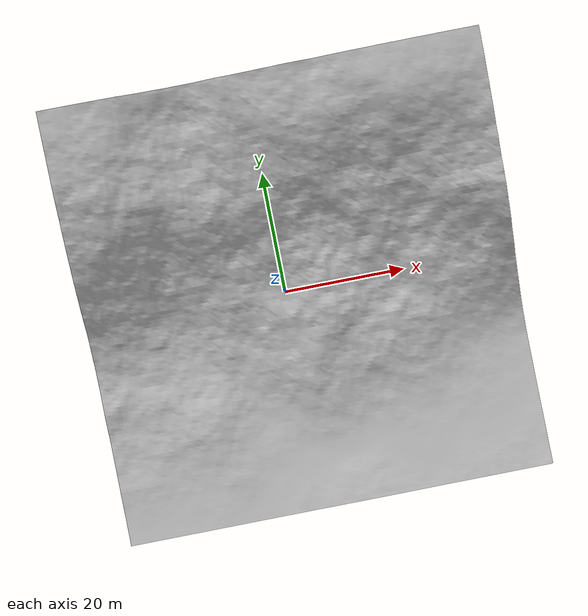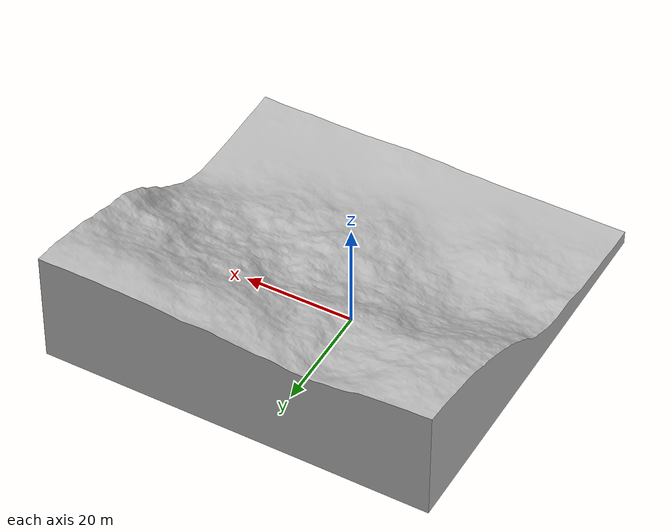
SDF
<?xml version='1.0'?>
<sdf version='1.6'>
  <model name='landslide_dae'>
    <static>1</static>
    <allow_auto_disable>1</allow_auto_disable>
    <link name='terrain'>
      <self_collide>0</self_collide>
      <enable_wind>0</enable_wind>
      <kinematic>0</kinematic>
      <pose frame=''>0 0 0 0 0 0</pose>
      <gravity>1</gravity>
      <inertial>
        <mass>1</mass>
        <pose frame=''>0 0 0 0 0 0</pose>
        <inertia>
          <ixx>1</ixx>
          <ixy>0</ixy>
          <ixz>0</ixz>
          <iyy>1</iyy>
          <iyz>0</iyz>
          <izz>1</izz>
        </inertia>
      </inertial>

      <collision name='collision'>
        <laser_retro>0</laser_retro>
        <max_contacts>10</max_contacts>
        <pose frame=''>0 0 0 0 0 0</pose>
        <geometry>
          <mesh>
            <uri>model://landslide_dae/meshes/landslide_model.dae</uri>
            <scale>1 1 1</scale>
          </mesh>
        </geometry>
        <surface>
          <friction>
            <ode>
              <mu>100</mu>
              <mu2>50</mu2>
              <fdir1>0 0 0</fdir1>
              <slip1>0</slip1>
              <slip2>0</slip2>
            </ode>
            <torsional>
              <coefficient>1</coefficient>
              <patch_radius>0</patch_radius>
              <surface_radius>0</surface_radius>
              <use_patch_radius>1</use_patch_radius>
              <ode>
                <slip>0</slip>
              </ode>
            </torsional>
          </friction>
          <bounce>
            <restitution_coefficient>0</restitution_coefficient>
            <threshold>1e+06</threshold>
          </bounce>
          <contact>
            <collide_without_contact>0</collide_without_contact>
            <collide_without_contact_bitmask>1</collide_without_contact_bitmask>
            <collide_bitmask>1</collide_bitmask>
            <ode>
              <soft_cfm>0</soft_cfm>
              <soft_erp>0.2</soft_erp>
              <kp>1e+13</kp>
              <kd>1</kd>
              <max_vel>0.01</max_vel>
              <min_depth>0</min_depth>
            </ode>
            <bullet>
              <split_impulse>1</split_impulse>
              <split_impulse_penetration_threshold>-0.01</split_impulse_penetration_threshold>
              <soft_cfm>0</soft_cfm>
              <soft_erp>0.2</soft_erp>
              <kp>1e+13</kp>
              <kd>1</kd>
            </bullet>
          </contact>
        </surface>
      </collision>

      <visual name='visual'>
        <geometry>
          <mesh>
            <uri>model://landslide_dae/meshes/landslide_model.dae</uri>
            <scale>1 1 1</scale>
          </mesh>
        </geometry>
        <pose frame=''>0 0 0 0 0 0</pose>
        <transparency>0</transparency>
        <cast_shadows>1</cast_shadows>
      </visual>
    </link>
  </model>
</sdf>
